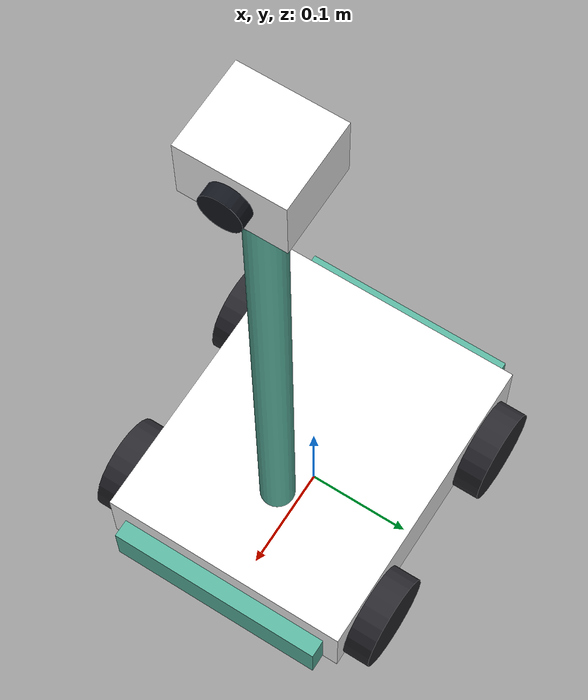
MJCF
<mujoco model="pyunto_p1">
  <compiler angle="radian" autolimits="true"/>

  <default>
    <default class="p1">
      <geom type="box" condim="3" friction="1.1 0.05 0.01" density="320" group="1"/>
      <joint type="hinge" damping="0.4" armature="0.004" limited="true"/>
      <default class="p1_wheel">
        <geom type="cylinder" size="0.045 0.018" condim="4"
              friction="1.6 0.06 0.02" density="600" rgba="0.16 0.16 0.18 1"/>
        <joint type="hinge" axis="0 1 0" damping="0.08" armature="0.0015" limited="false"/>
      </default>
    </default>
  </default>

  <asset>
    <material name="p1_body" rgba="0.95 0.95 0.96 1" specular="0.3" shininess="0.4"/>
    <material name="p1_trim" rgba="0.35 0.70 0.62 1" specular="0.4"/>
    <material name="p1_lens" rgba="0.08 0.09 0.12 1" specular="0.9" shininess="0.9"/>
  </asset>

  <worldbody>
    <body name="base" pos="0 0 0.062" childclass="p1">
      <freejoint name="root"/>
      <inertial pos="0 0 0" mass="2.2" diaginertia="0.010 0.014 0.018"/>

      <geom name="chassis" type="box" size="0.15 0.12 0.035" material="p1_body"/>
      <geom name="bumper_f" type="box" pos="0.155 0 -0.012" size="0.012 0.105 0.022"
            material="p1_trim"/>
      <geom name="bumper_r" type="box" pos="-0.155 0 -0.012" size="0.012 0.105 0.022"
            material="p1_trim"/>

      <body name="mast" pos="0.06 0 0.035">
        <geom name="mast_post" type="cylinder" size="0.016 0.27" pos="0 0 0.27"
              material="p1_trim"/>
        <body name="pan" pos="0 0 0.56">
          <joint name="cam_pan" axis="0 0 1" range="-2.6 2.6" damping="0.25"/>
          <geom name="pan_shell" type="cylinder" size="0.032 0.014" material="p1_body"/>
          <body name="head" pos="0 0 0.026">
            <joint name="cam_tilt" axis="0 1 0" range="-1.35 0.75" damping="0.2"/>
            <geom name="head_shell" type="box" size="0.036 0.042 0.028" material="p1_body"/>
            <geom name="lens" type="cylinder" size="0.017 0.008" pos="0.040 0 0"
                  euler="0 1.5708 0" material="p1_lens"/>
            <camera name="head_cam" pos="0.046 0 0" xyaxes="0 -1 0  0 0 1" fovy="72"/>
          </body>
        </body>
      </body>

      <body name="wheel_lf" pos="0.095 0.128 -0.017">
        <joint name="drive_lf" class="p1_wheel"/>
        <geom name="tyre_lf" class="p1_wheel" euler="1.5708 0 0"/>
      </body>
      <body name="wheel_rf" pos="0.095 -0.128 -0.017">
        <joint name="drive_rf" class="p1_wheel"/>
        <geom name="tyre_rf" class="p1_wheel" euler="1.5708 0 0"/>
      </body>
      <body name="wheel_lr" pos="-0.095 0.128 -0.017">
        <joint name="drive_lr" class="p1_wheel"/>
        <geom name="tyre_lr" class="p1_wheel" euler="1.5708 0 0"/>
      </body>
      <body name="wheel_rr" pos="-0.095 -0.128 -0.017">
        <joint name="drive_rr" class="p1_wheel"/>
        <geom name="tyre_rr" class="p1_wheel" euler="1.5708 0 0"/>
      </body>
    </body>
  </worldbody>

  <actuator>
    <velocity name="drive_lf" joint="drive_lf" kv="2.4" ctrlrange="-34 34"/>
    <velocity name="drive_rf" joint="drive_rf" kv="2.4" ctrlrange="-34 34"/>
    <velocity name="drive_lr" joint="drive_lr" kv="2.4" ctrlrange="-34 34"/>
    <velocity name="drive_rr" joint="drive_rr" kv="2.4" ctrlrange="-34 34"/>
    <position name="cam_pan" joint="cam_pan" kp="3.5" ctrlrange="-2.6 2.6"/>
    <position name="cam_tilt" joint="cam_tilt" kp="2.5" ctrlrange="-1.35 0.75"/>
  </actuator>

</mujoco>
